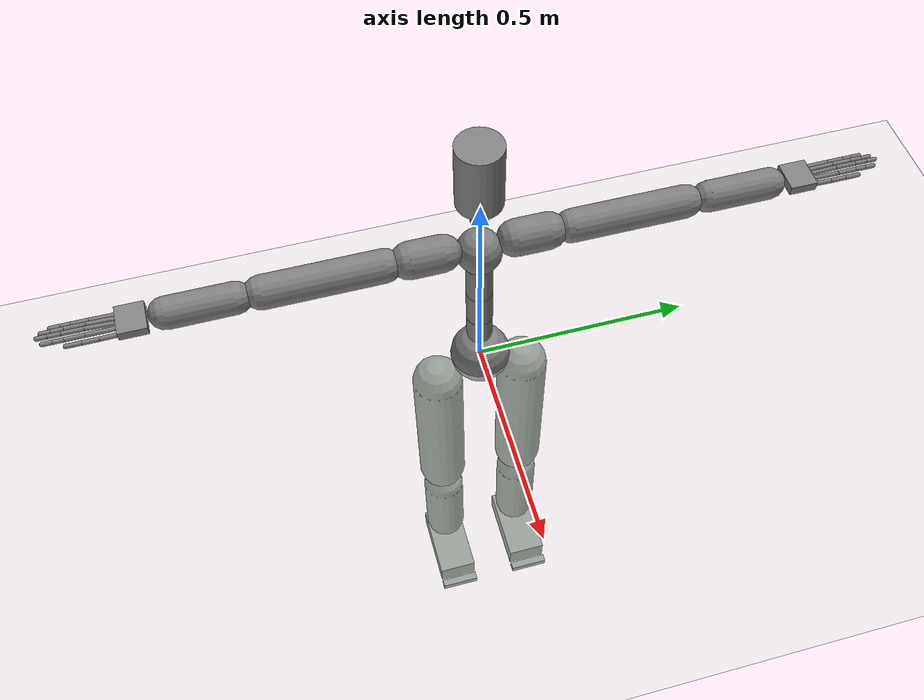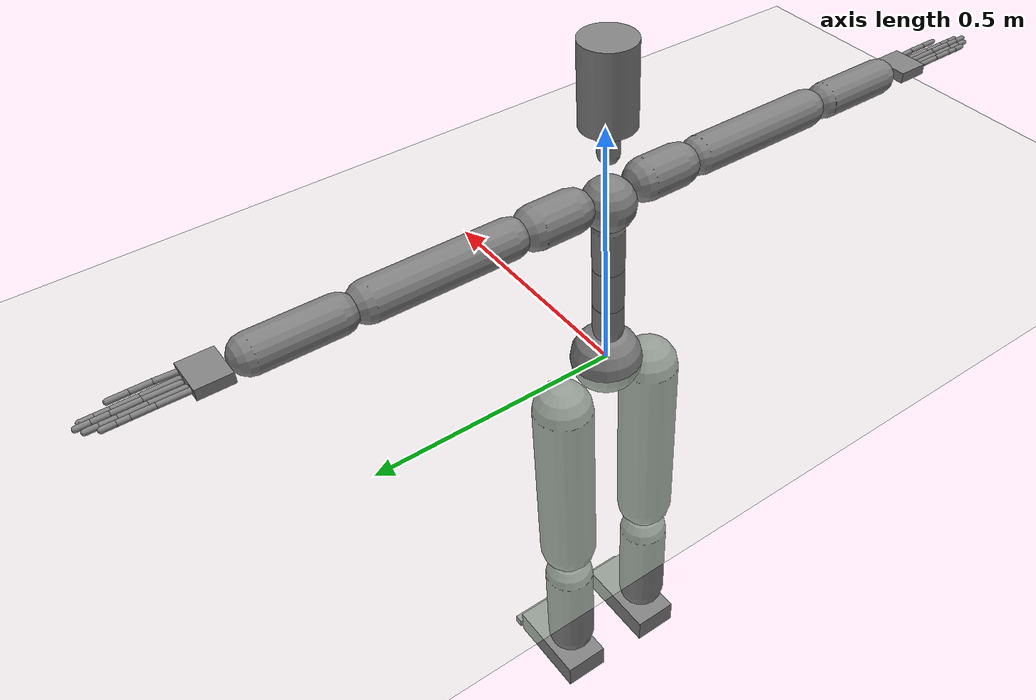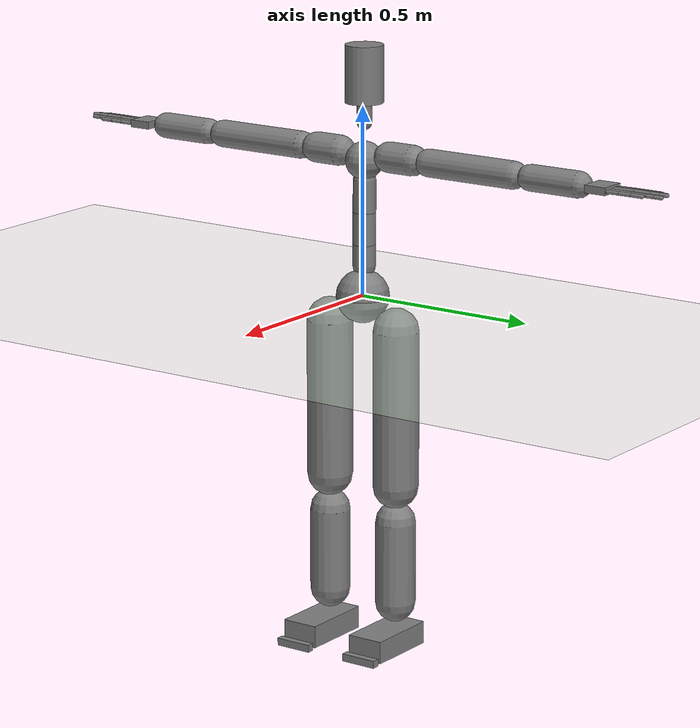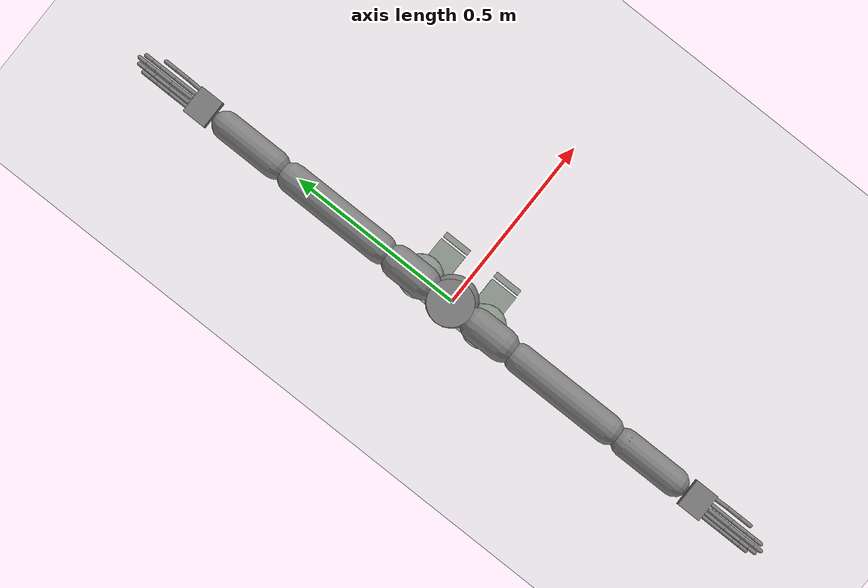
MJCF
<!-- change the damping from 50 to 500 -->
<mujoco model="humanoid">
  <compiler coordinate="local"/>
  <statistic extent="2" center="0 0 1"/>
  <option timestep="0.00555"/>
  <default>
    <motor ctrlrange="-1 1" ctrllimited="true"/>
    <geom type="capsule" condim="1" friction="1.0 0.05 0.05" solimp=".9 .99 .003" solref=".015 1"/>
    <joint type="hinge" damping="0.1" stiffness="5" armature=".007" limited="true" solimplimit="0 .99 .01"/>
    <site size=".04" group="3"/>
    <default class="force-torque">
      <site type="box" size=".01 .01 .02" rgba="1 0 0 1"/>
    </default>
    <default class="touch">
      <site type="capsule" rgba="0 0 1 .3"/>
    </default>
  </default>
  <asset>
    <texture type="skybox" builtin="gradient" rgb1=".4 .5 .6" rgb2="0 0 0" width="100" height="100"/>
    <texture builtin="flat" height="1278" mark="cross" markrgb="1 1 1" name="texgeom" random="0.01" rgb1="0.8 0.6 0.4" rgb2="0.8 0.6 0.4" type="cube" width="127"/>
    <texture builtin="checker" height="100" name="texplane" rgb1="0 0 0" rgb2="0.8 0.8 0.8" type="2d" width="100"/>
    <material name="MatPlane" reflectance="0.5" shininess="1" specular="1" texrepeat="60 60" texture="texplane"/>
    <material name="geom" texture="texgeom" texuniform="true"/>
  </asset>
  <worldbody>
    <light cutoff="100" diffuse="1 1 1" dir="-0 0 -1.3" directional="true" exponent="1" pos="0 0 1.3" specular=".1 .1 .1"/>
    <geom conaffinity="1" condim="3" name="floor" pos="0 0 0" rgba="0.8 0.9 0.8 1" size="100 100 .2" type="plane" material="MatPlane"/>
    <body name="pHipOrigin" pos="0 0 0">
      <freejoint name="pHipOrigin"/>
      <geom type="sphere" contype="1" conaffinity="1" density="4629.6296296296305" size="0.07011" pos="0.0000 0.0000 -0.0000"/>
      <body name="jL5S1" pos="-0.006525112993283282 0.0 0.05872585135900841">
        <geom type="capsule" contype="1" conaffinity="1" density="1000" fromto="0 0 0.02 0.0 0.0 0.07786956429481506" size="0.03"/>
        <joint name="jL5S1_x" type="hinge" pos="0 0 0" axis="1 0 0" stiffness="500" damping="500" armature="0.02" range="-180.0000 180.0000"/>
        <joint name="jL5S1_y" type="hinge" pos="0 0 0" axis="0 1 0" stiffness="500" damping="500" armature="0.02" range="-180.0000 180.0000"/>
        <joint name="jL5S1_z" type="hinge" pos="0 0 0" axis="0 0 1" stiffness="500" damping="500" armature="0.02" range="-180.0000 180.0000"/>
        <body name="jL4L3" pos="0.0 0.0 0.07786956429481506">
          <geom type="capsule" contype="1" conaffinity="1" density="1000" fromto="0 0 0 -0.0006549608004406925 0.0 0.08489453092232938" size="0.03"/>
          <joint name="jL4L3_x" type="hinge" pos="0 0 0" axis="1 0 0" stiffness="500" damping="500" armature="0.02" range="-180.0000 180.0000"/>
          <joint name="jL4L3_y" type="hinge" pos="0 0 0" axis="0 1 0" stiffness="500" damping="500" armature="0.02" range="-180.0000 180.0000"/>
          <joint name="jL4L3_z" type="hinge" pos="0 0 0" axis="0 0 1" stiffness="500" damping="500" armature="0.02" range="-180.0000 180.0000"/>
          <body name="jL1T12" pos="-0.0006549608004406925 0.0 0.08489453092232938">
            <geom type="capsule" contype="1" conaffinity="1" density="1000" fromto="0 0 0 -0.0006628721485151534 0.0 0.08575296726030318" size="0.03"/>
            <joint name="jL1T12_x" type="hinge" pos="0 0 0" axis="1 0 0" stiffness="500" damping="500" armature="0.02" range="-180.0000 180.0000"/>
            <joint name="jL1T12_y" type="hinge" pos="0 0 0" axis="0 1 0" stiffness="500" damping="500" armature="0.02" range="-180.0000 180.0000"/>
            <joint name="jL1T12_z" type="hinge" pos="0 0 0" axis="0 0 1" stiffness="500" damping="500" armature="0.02" range="-180.0000 180.0000"/>
            <body name="jT9T8" pos="-0.0006628721485151534 0.0 0.08575296726030318">
              <geom type="sphere" contype="1" conaffinity="1" density="1000" size="0.05011" pos="0.0000 0.0000 0.050000"/>
              <joint name="jT9T8_x" type="hinge" pos="0 0 0" axis="1 0 0" stiffness="500" damping="500" armature="0.02" range="-180.0000 180.0000"/>
              <joint name="jT9T8_y" type="hinge" pos="0 0 0" axis="0 1 0" stiffness="500" damping="500" armature="0.02" range="-180.0000 180.0000"/>
              <joint name="jT9T8_z" type="hinge" pos="0 0 0" axis="0 0 1" stiffness="500" damping="500" armature="0.02" range="-180.0000 180.0000"/>
              <body name="jT1C7" pos="0.0 0.0 0.11929699778556824">
                <geom type="capsule" contype="1" conaffinity="1" density="1000" fromto="0 0 0.03 0.0009642789804840591 0.0 0.0817350471826591" size="0.02"/>
                <joint name="jT1C7_x" type="hinge" pos="0 0 0" axis="1 0 0" stiffness="500" damping="500" armature="0.02" range="-180.0000 180.0000"/>
                <joint name="jT1C7_y" type="hinge" pos="0 0 0" axis="0 1 0" stiffness="500" damping="500" armature="0.02" range="-180.0000 180.0000"/>
                <joint name="jT1C7_z" type="hinge" pos="0 0 0" axis="0 0 1" stiffness="500" damping="500" armature="0.02" range="-180.0000 180.0000"/>
                <body name="jC1Head" pos="0.0009642789804840591 0.0 0.0817350471826591">
                  <geom type="cylinder" contype="1" conaffinity="1" density="1000" fromto="0 0 0 0 0 0.15" size="0.05"/>
                  <joint name="jC1Head_x" type="hinge" pos="0 0 0" axis="1 0 0" stiffness="500" damping="500" armature="0.02" range="-180.0000 180.0000"/>
                  <joint name="jC1Head_y" type="hinge" pos="0 0 0" axis="0 1 0" stiffness="500" damping="500" armature="0.02" range="-180.0000 180.0000"/>
                  <joint name="jC1Head_z" type="hinge" pos="0 0 0" axis="0 0 1" stiffness="500" damping="500" armature="0.02" range="-180.0000 180.0000"/>
                </body>
              </body>
              <body name="jRightT4Shoulder" pos="0.0 -0.02755671020111957 0.06718930767951037">
                <geom type="capsule" contype="1" conaffinity="1" density="1000" fromto="0 -0.05 0 0.0 -0.12239102274179459 0.0" size="0.04"/>
                <joint name="jRightT4Shoulder_x" type="hinge" pos="0 0 0" axis="1 0 0" stiffness="500" damping="500" armature="0.02" range="-180.0000 180.0000"/>
                <joint name="jRightT4Shoulder_y" type="hinge" pos="0 0 0" axis="0 1 0" stiffness="500" damping="500" armature="0.02" range="-180.0000 180.0000"/>
                <joint name="jRightT4Shoulder_z" type="hinge" pos="0 0 0" axis="0 0 1" stiffness="500" damping="500" armature="0.02" range="-180.0000 180.0000"/>
                <body name="jRightShoulder" pos="0.0 -0.12239102274179459 0.0">
                  <geom type="capsule" contype="1" conaffinity="1" density="1000" fromto="0 -0.05 0 0.0 -0.3058325946331024 0.0" size="0.036"/>
                  <joint name="jRightShoulder_x" type="hinge" pos="0 0 0" axis="1 0 0" stiffness="500" damping="500" armature="0.02" range="-180.0000 180.0000"/>
                  <joint name="jRightShoulder_y" type="hinge" pos="0 0 0" axis="0 1 0" stiffness="500" damping="500" armature="0.02" range="-180.0000 180.0000"/>
                  <joint name="jRightShoulder_z" type="hinge" pos="0 0 0" axis="0 0 1" stiffness="500" damping="500" armature="0.02" range="-180.0000 180.0000"/>
                  <body name="jRightElbow" pos="0.0 -0.3058325946331024 0.0">
                    <geom type="capsule" contype="1" conaffinity="1" density="1000" fromto="0 -0.05 0 0.00010393499343700972 -0.1922360254445637 0.0" size="0.034"/>
                    <joint name="jRightElbow_x" type="hinge" pos="0 0 0" axis="1 0 0" stiffness="500" damping="500" armature="0.02" range="-180.0000 180.0000"/>
                    <joint name="jRightElbow_y" type="hinge" pos="0 0 0" axis="0 1 0" stiffness="500" damping="500" armature="0.02" range="-180.0000 180.0000"/>
                    <joint name="jRightElbow_z" type="hinge" pos="0 0 0" axis="0 0 1" stiffness="500" damping="500" armature="0.02" range="-180.0000 180.0000"/>
                    <body name="jRightWrist" pos="0.00010393499343700972 -0.2582360254445637 0.0">
                      <geom density="1000" type="box" pos="0 0 0" size="0.035 0.03 0.01" quat="1.0 0 0 0"/>
                      <joint name="jRightWrist_x" type="hinge" pos="0 0 0" axis="1 0 0" stiffness="500" damping="500" armature="0.02" range="-180.0000 180.0000"/>
                      <joint name="jRightWrist_y" type="hinge" pos="0 0 0" axis="0 1 0" stiffness="500" damping="500" armature="0.02" range="-180.0000 180.0000"/>
                      <joint name="jRightWrist_z" type="hinge" pos="0 0 0" axis="0 0 1" stiffness="500" damping="500" armature="0.02" range="-180.0000 180.0000"/>
                      <body name="jRightFirstCMC" pos="0.027593337 -0.02644976 -0.0012495951">
                        <geom type="capsule" contype="1" conaffinity="1" density="1000" fromto="0 0 0 0.001373075065203011 -0.03874726966023445 0.0008187273051589727" size="0.005"/>
                        <joint name="jRightFirstCMC_x" type="hinge" pos="0 0 0" axis="1 0 0" stiffness="500" damping="500" armature="0.02" range="-180.0000 180.0000"/>
                        <joint name="jRightFirstCMC_y" type="hinge" pos="0 0 0" axis="0 1 0" stiffness="500" damping="500" armature="0.02" range="-180.0000 180.0000"/>
                        <joint name="jRightFirstCMC_z" type="hinge" pos="0 0 0" axis="0 0 1" stiffness="500" damping="500" armature="0.02" range="-180.0000 180.0000"/>
                        <body name="jRightFirstMCP" pos="0.0013730751 -0.03874727 0.0008187273">
                          <geom type="capsule" contype="1" conaffinity="1" density="1000" fromto="0 0 0 0.0 -0.03402020037174225 0.0" size="0.005"/>
                          <joint name="jRightFirstMCP_x" type="hinge" pos="0 0 0" axis="1 0 0" stiffness="500" damping="500" armature="0.02" range="-180.0000 180.0000"/>
                          <joint name="jRightFirstMCP_y" type="hinge" pos="0 0 0" axis="0 1 0" stiffness="500" damping="500" armature="0.02" range="-180.0000 180.0000"/>
                          <joint name="jRightFirstMCP_z" type="hinge" pos="0 0 0" axis="0 0 1" stiffness="500" damping="500" armature="0.02" range="-180.0000 180.0000"/>
                          <body name="jRightIP" pos="0.0 -0.0340202 0.0">
                            <geom type="capsule" contype="1" conaffinity="1" density="1000" fromto="0 0 0 0.0 -0.03095199167728424 0.0" size="0.005"/>
                            <joint name="jRightIP_x" type="hinge" pos="0 0 0" axis="1 0 0" stiffness="500" damping="500" armature="0.02" range="-180.0000 180.0000"/>
                            <joint name="jRightIP_y" type="hinge" pos="0 0 0" axis="0 1 0" stiffness="500" damping="500" armature="0.02" range="-180.0000 180.0000"/>
                            <joint name="jRightIP_z" type="hinge" pos="0 0 0" axis="0 0 1" stiffness="500" damping="500" armature="0.02" range="-180.0000 180.0000"/>
                          </body>
                        </body>
                      </body>
                      <body name="jRightSecondCMC" pos="0.011694563 -0.03416781 -0.00059596956">
                        <geom type="capsule" contype="1" conaffinity="1" density="1000" fromto="0 0 0 -0.0003564362705219537 -0.0568489134311676 -0.0005897116498090327" size="0.005"/>
                        <joint name="jRightSecondCMC_x" type="hinge" pos="0 0 0" axis="1 0 0" stiffness="500" damping="500" armature="0.02" range="-180.0000 180.0000"/>
                        <joint name="jRightSecondCMC_y" type="hinge" pos="0 0 0" axis="0 1 0" stiffness="500" damping="500" armature="0.02" range="-180.0000 180.0000"/>
                        <joint name="jRightSecondCMC_z" type="hinge" pos="0 0 0" axis="0 0 1" stiffness="500" damping="500" armature="0.02" range="-180.0000 180.0000"/>
                        <body name="jRightSecondMCP" pos="-0.00035643627 -0.056848913 -0.00058971165">
                          <geom type="capsule" contype="1" conaffinity="1" density="1000" fromto="0 0 0 0.0 -0.041111961007118225 0.0" size="0.005"/>
                          <joint name="jRightSecondMCP_x" type="hinge" pos="0 0 0" axis="1 0 0" stiffness="500" damping="500" armature="0.02" range="-180.0000 180.0000"/>
                          <joint name="jRightSecondMCP_y" type="hinge" pos="0 0 0" axis="0 1 0" stiffness="500" damping="500" armature="0.02" range="-180.0000 180.0000"/>
                          <joint name="jRightSecondMCP_z" type="hinge" pos="0 0 0" axis="0 0 1" stiffness="500" damping="500" armature="0.02" range="-180.0000 180.0000"/>
                          <body name="jRightSecondPIP" pos="0.0 -0.04111196 0.0">
                            <geom type="capsule" contype="1" conaffinity="1" density="1000" fromto="0 0 0 0.0 -0.022474944591522217 0.0" size="0.005"/>
                            <joint name="jRightSecondPIP_x" type="hinge" pos="0 0 0" axis="1 0 0" stiffness="500" damping="500" armature="0.02" range="-180.0000 180.0000"/>
                            <joint name="jRightSecondPIP_y" type="hinge" pos="0 0 0" axis="0 1 0" stiffness="500" damping="500" armature="0.02" range="-180.0000 180.0000"/>
                            <joint name="jRightSecondPIP_z" type="hinge" pos="0 0 0" axis="0 0 1" stiffness="500" damping="500" armature="0.02" range="-180.0000 180.0000"/>
                            <body name="jRightSecondDIP" pos="0.0 -0.022474945 0.0">
                              <geom type="capsule" contype="1" conaffinity="1" density="1000" fromto="0 0 0 0.0 -0.020166829228401184 0.0" size="0.005"/>
                              <joint name="jRightSecondDIP_x" type="hinge" pos="0 0 0" axis="1 0 0" stiffness="500" damping="500" armature="0.02" range="-180.0000 180.0000"/>
                              <joint name="jRightSecondDIP_y" type="hinge" pos="0 0 0" axis="0 1 0" stiffness="500" damping="500" armature="0.02" range="-180.0000 180.0000"/>
                              <joint name="jRightSecondDIP_z" type="hinge" pos="0 0 0" axis="0 0 1" stiffness="500" damping="500" armature="0.02" range="-180.0000 180.0000"/>
                            </body>
                          </body>
                        </body>
                      </body>
                      <body name="jRightThirdCMC" pos="-0.0006651678 -0.03597074 0.0015122646">
                        <geom type="capsule" contype="1" conaffinity="1" density="1000" fromto="0 0 0 -0.0006651937146671116 -0.05511140078306198 0.0014993692748248577" size="0.005"/>
                        <joint name="jRightThirdCMC_x" type="hinge" pos="0 0 0" axis="1 0 0" stiffness="500" damping="500" armature="0.02" range="-180.0000 180.0000"/>
                        <joint name="jRightThirdCMC_y" type="hinge" pos="0 0 0" axis="0 1 0" stiffness="500" damping="500" armature="0.02" range="-180.0000 180.0000"/>
                        <joint name="jRightThirdCMC_z" type="hinge" pos="0 0 0" axis="0 0 1" stiffness="500" damping="500" armature="0.02" range="-180.0000 180.0000"/>
                        <body name="jRightThirdMCP" pos="-0.0006651937 -0.0551114 0.0014993693">
                          <geom type="capsule" contype="1" conaffinity="1" density="1000" fromto="0 0 0 0.0 -0.044959403574466705 0.0" size="0.005"/>
                          <joint name="jRightThirdMCP_x" type="hinge" pos="0 0 0" axis="1 0 0" stiffness="500" damping="500" armature="0.02" range="-180.0000 180.0000"/>
                          <joint name="jRightThirdMCP_y" type="hinge" pos="0 0 0" axis="0 1 0" stiffness="500" damping="500" armature="0.02" range="-180.0000 180.0000"/>
                          <joint name="jRightThirdMCP_z" type="hinge" pos="0 0 0" axis="0 0 1" stiffness="500" damping="500" armature="0.02" range="-180.0000 180.0000"/>
                          <body name="jRightThirdPIP" pos="0.0 -0.044959404 0.0">
                            <geom type="capsule" contype="1" conaffinity="1" density="1000" fromto="0 0 0 0.0 -0.0263042151927948 0.0" size="0.005"/>
                            <joint name="jRightThirdPIP_x" type="hinge" pos="0 0 0" axis="1 0 0" stiffness="500" damping="500" armature="0.02" range="-180.0000 180.0000"/>
                            <joint name="jRightThirdPIP_y" type="hinge" pos="0 0 0" axis="0 1 0" stiffness="500" damping="500" armature="0.02" range="-180.0000 180.0000"/>
                            <joint name="jRightThirdPIP_z" type="hinge" pos="0 0 0" axis="0 0 1" stiffness="500" damping="500" armature="0.02" range="-180.0000 180.0000"/>
                            <body name="jRightThirdDIP" pos="0.0 -0.026304215 0.0">
                              <geom type="capsule" contype="1" conaffinity="1" density="1000" fromto="0 0 0 0.0 -0.020664691925048828 0.0" size="0.005"/>
                              <joint name="jRightThirdDIP_x" type="hinge" pos="0 0 0" axis="1 0 0" stiffness="500" damping="500" armature="0.02" range="-180.0000 180.0000"/>
                              <joint name="jRightThirdDIP_y" type="hinge" pos="0 0 0" axis="0 1 0" stiffness="500" damping="500" armature="0.02" range="-180.0000 180.0000"/>
                              <joint name="jRightThirdDIP_z" type="hinge" pos="0 0 0" axis="0 0 1" stiffness="500" damping="500" armature="0.02" range="-180.0000 180.0000"/>
                            </body>
                          </body>
                        </body>
                      </body>
                      <body name="jRightFourthCMC" pos="-0.012202627 -0.033986334 0.0007999851">
                        <geom type="capsule" contype="1" conaffinity="1" density="1000" fromto="0 0 0 -0.00039075271342881024 -0.05355646833777428 0.0008414146141149104" size="0.005"/>
                        <joint name="jRightFourthCMC_x" type="hinge" pos="0 0 0" axis="1 0 0" stiffness="500" damping="500" armature="0.02" range="-180.0000 180.0000"/>
                        <joint name="jRightFourthCMC_y" type="hinge" pos="0 0 0" axis="0 1 0" stiffness="500" damping="500" armature="0.02" range="-180.0000 180.0000"/>
                        <joint name="jRightFourthCMC_z" type="hinge" pos="0 0 0" axis="0 0 1" stiffness="500" damping="500" armature="0.02" range="-180.0000 180.0000"/>
                        <body name="jRightFourthMCP" pos="-0.0003907527 -0.05355647 0.0008414146">
                          <geom type="capsule" contype="1" conaffinity="1" density="1000" fromto="0 0 0 0.0 -0.04271991550922394 0.0" size="0.005"/>
                          <joint name="jRightFourthMCP_x" type="hinge" pos="0 0 0" axis="1 0 0" stiffness="500" damping="500" armature="0.02" range="-180.0000 180.0000"/>
                          <joint name="jRightFourthMCP_y" type="hinge" pos="0 0 0" axis="0 1 0" stiffness="500" damping="500" armature="0.02" range="-180.0000 180.0000"/>
                          <joint name="jRightFourthMCP_z" type="hinge" pos="0 0 0" axis="0 0 1" stiffness="500" damping="500" armature="0.02" range="-180.0000 180.0000"/>
                          <body name="jRightFourthPIP" pos="0.0 -0.042719916 0.0">
                            <geom type="capsule" contype="1" conaffinity="1" density="1000" fromto="0 0 0 0.0 -0.025312185287475586 0.0" size="0.005"/>
                            <joint name="jRightFourthPIP_x" type="hinge" pos="0 0 0" axis="1 0 0" stiffness="500" damping="500" armature="0.02" range="-180.0000 180.0000"/>
                            <joint name="jRightFourthPIP_y" type="hinge" pos="0 0 0" axis="0 1 0" stiffness="500" damping="500" armature="0.02" range="-180.0000 180.0000"/>
                            <joint name="jRightFourthPIP_z" type="hinge" pos="0 0 0" axis="0 0 1" stiffness="500" damping="500" armature="0.02" range="-180.0000 180.0000"/>
                            <body name="jRightFourthDIP" pos="0.0 -0.025312185 0.0">
                              <geom type="capsule" contype="1" conaffinity="1" density="1000" fromto="0 0 0 0.0 -0.019395485520362854 0.0" size="0.005"/>
                              <joint name="jRightFourthDIP_x" type="hinge" pos="0 0 0" axis="1 0 0" stiffness="500" damping="500" armature="0.02" range="-180.0000 180.0000"/>
                              <joint name="jRightFourthDIP_y" type="hinge" pos="0 0 0" axis="0 1 0" stiffness="500" damping="500" armature="0.02" range="-180.0000 180.0000"/>
                              <joint name="jRightFourthDIP_z" type="hinge" pos="0 0 0" axis="0 0 1" stiffness="500" damping="500" armature="0.02" range="-180.0000 180.0000"/>
                            </body>
                          </body>
                        </body>
                      </body>
                      <body name="jRightFifthCMC" pos="-0.02139312 -0.029808875 0.00058803335">
                        <geom type="capsule" contype="1" conaffinity="1" density="1000" fromto="0 0 0 -7.511340754717821e-06 -0.05085420235991478 0.0006998170865699649" size="0.005"/>
                        <joint name="jRightFifthCMC_x" type="hinge" pos="0 0 0" axis="1 0 0" stiffness="500" damping="500" armature="0.02" range="-180.0000 180.0000"/>
                        <joint name="jRightFifthCMC_y" type="hinge" pos="0 0 0" axis="0 1 0" stiffness="500" damping="500" armature="0.02" range="-180.0000 180.0000"/>
                        <joint name="jRightFifthCMC_z" type="hinge" pos="0 0 0" axis="0 0 1" stiffness="500" damping="500" armature="0.02" range="-180.0000 180.0000"/>
                        <body name="jRightFifthMCP" pos="-7.5113408e-06 -0.050854202 0.0006998171">
                          <geom type="capsule" contype="1" conaffinity="1" density="1000" fromto="0 0 0 0.0 -0.03575402498245239 0.0" size="0.005"/>
                          <joint name="jRightFifthMCP_x" type="hinge" pos="0 0 0" axis="1 0 0" stiffness="500" damping="500" armature="0.02" range="-180.0000 180.0000"/>
                          <joint name="jRightFifthMCP_y" type="hinge" pos="0 0 0" axis="0 1 0" stiffness="500" damping="500" armature="0.02" range="-180.0000 180.0000"/>
                          <joint name="jRightFifthMCP_z" type="hinge" pos="0 0 0" axis="0 0 1" stiffness="500" damping="500" armature="0.02" range="-180.0000 180.0000"/>
                          <body name="jRightFifthPIP" pos="0.0 -0.035754025 0.0">
                            <geom type="capsule" contype="1" conaffinity="1" density="1000" fromto="0 0 0 0.0 -0.019388854503631592 0.0" size="0.005"/>
                            <joint name="jRightFifthPIP_x" type="hinge" pos="0 0 0" axis="1 0 0" stiffness="500" damping="500" armature="0.02" range="-180.0000 180.0000"/>
                            <joint name="jRightFifthPIP_y" type="hinge" pos="0 0 0" axis="0 1 0" stiffness="500" damping="500" armature="0.02" range="-180.0000 180.0000"/>
                            <joint name="jRightFifthPIP_z" type="hinge" pos="0 0 0" axis="0 0 1" stiffness="500" damping="500" armature="0.02" range="-180.0000 180.0000"/>
                            <body name="jRightFifthDIP" pos="0.0 -0.019388855 0.0">
                              <geom type="capsule" contype="1" conaffinity="1" density="1000" fromto="0 0 0 0.0 -0.020557522773742676 0.0" size="0.005"/>
                              <joint name="jRightFifthDIP_x" type="hinge" pos="0 0 0" axis="1 0 0" stiffness="500" damping="500" armature="0.02" range="-180.0000 180.0000"/>
                              <joint name="jRightFifthDIP_y" type="hinge" pos="0 0 0" axis="0 1 0" stiffness="500" damping="500" armature="0.02" range="-180.0000 180.0000"/>
                              <joint name="jRightFifthDIP_z" type="hinge" pos="0 0 0" axis="0 0 1" stiffness="500" damping="500" armature="0.02" range="-180.0000 180.0000"/>
                            </body>
                          </body>
                        </body>
                      </body>
                    </body>
                  </body>
                </body>
              </body>
              <body name="jLeftT4Shoulder" pos="0.0 0.02760933651714752 0.06731762218852957">
                <geom type="capsule" contype="1" conaffinity="1" density="1000" fromto="0 0.05 0 0.0 0.12267043441534042 0.0" size="0.04"/>
                <joint name="jLeftT4Shoulder_x" type="hinge" pos="0 0 0" axis="1 0 0" stiffness="500" damping="500" armature="0.02" range="-180.0000 180.0000"/>
                <joint name="jLeftT4Shoulder_y" type="hinge" pos="0 0 0" axis="0 1 0" stiffness="500" damping="500" armature="0.02" range="-180.0000 180.0000"/>
                <joint name="jLeftT4Shoulder_z" type="hinge" pos="0 0 0" axis="0 0 1" stiffness="500" damping="500" armature="0.02" range="-180.0000 180.0000"/>
                <body name="jLeftShoulder" pos="0.0 0.12267043441534042 0.0">
                  <geom type="capsule" contype="1" conaffinity="1" density="1000" fromto="0 0.05 0 0.0 0.3049902617931366 0.0" size="0.036"/>
                  <joint name="jLeftShoulder_x" type="hinge" pos="0 0 0" axis="1 0 0" stiffness="500" damping="500" armature="0.02" range="-180.0000 180.0000"/>
                  <joint name="jLeftShoulder_y" type="hinge" pos="0 0 0" axis="0 1 0" stiffness="500" damping="500" armature="0.02" range="-180.0000 180.0000"/>
                  <joint name="jLeftShoulder_z" type="hinge" pos="0 0 0" axis="0 0 1" stiffness="500" damping="500" armature="0.02" range="-180.0000 180.0000"/>
                  <body name="jLeftElbow" pos="0.0 0.3049902617931366 0.0">
                    <geom type="capsule" contype="1" conaffinity="1" density="1000" fromto="0 0.05 0 0.0001035571075008143 0.19129713317154262 0.0" size="0.034"/>
                    <joint name="jLeftElbow_x" type="hinge" pos="0 0 0" axis="1 0 0" stiffness="500" damping="500" armature="0.02" range="-180.0000 180.0000"/>
                    <joint name="jLeftElbow_y" type="hinge" pos="0 0 0" axis="0 1 0" stiffness="500" damping="500" armature="0.02" range="-180.0000 180.0000"/>
                    <joint name="jLeftElbow_z" type="hinge" pos="0 0 0" axis="0 0 1" stiffness="500" damping="500" armature="0.02" range="-180.0000 180.0000"/>
                    <body name="jLeftWrist" pos="0.0001035571075008143 0.2572971331715426 0.0">
                      <geom density="1000" type="box" pos="0 0 0" size="0.035 0.03 0.01" quat="1.0 0 0 0"/>
                      <joint name="jLeftWrist_x" type="hinge" pos="0 0 0" axis="1 0 0" stiffness="500" damping="500" armature="0.02" range="-180.0000 180.0000"/>
                      <joint name="jLeftWrist_y" type="hinge" pos="0 0 0" axis="0 1 0" stiffness="500" damping="500" armature="0.02" range="-180.0000 180.0000"/>
                      <joint name="jLeftWrist_z" type="hinge" pos="0 0 0" axis="0 0 1" stiffness="500" damping="500" armature="0.02" range="-180.0000 180.0000"/>
                      <body name="jLeftFirstCMC" pos="0.027007377 0.027071157 -0.0012087612">
                        <geom type="capsule" contype="1" conaffinity="1" density="1000" fromto="0 0 0 0.001359848421998322 0.03874639794230461 0.0007978812791407108" size="0.005"/>
                        <joint name="jLeftFirstCMC_x" type="hinge" pos="0 0 0" axis="1 0 0" stiffness="500" damping="500" armature="0.02" range="-180.0000 180.0000"/>
                        <joint name="jLeftFirstCMC_y" type="hinge" pos="0 0 0" axis="0 1 0" stiffness="500" damping="500" armature="0.02" range="-180.0000 180.0000"/>
                        <joint name="jLeftFirstCMC_z" type="hinge" pos="0 0 0" axis="0 0 1" stiffness="500" damping="500" armature="0.02" range="-180.0000 180.0000"/>
                        <body name="jLeftFirstMCP" pos="0.0013598484 0.038746398 0.0007978813">
                          <geom type="capsule" contype="1" conaffinity="1" density="1000" fromto="0 0 0 0.0 0.03402020037174225 0.0" size="0.005"/>
                          <joint name="jLeftFirstMCP_x" type="hinge" pos="0 0 0" axis="1 0 0" stiffness="500" damping="500" armature="0.02" range="-180.0000 180.0000"/>
                          <joint name="jLeftFirstMCP_y" type="hinge" pos="0 0 0" axis="0 1 0" stiffness="500" damping="500" armature="0.02" range="-180.0000 180.0000"/>
                          <joint name="jLeftFirstMCP_z" type="hinge" pos="0 0 0" axis="0 0 1" stiffness="500" damping="500" armature="0.02" range="-180.0000 180.0000"/>
                          <body name="jLeftIP" pos="0.0 0.0340202 0.0">
                            <geom type="capsule" contype="1" conaffinity="1" density="1000" fromto="0 0 0 0.0 0.03095199167728424 0.0" size="0.005"/>
                            <joint name="jLeftIP_x" type="hinge" pos="0 0 0" axis="1 0 0" stiffness="500" damping="500" armature="0.02" range="-180.0000 180.0000"/>
                            <joint name="jLeftIP_y" type="hinge" pos="0 0 0" axis="0 1 0" stiffness="500" damping="500" armature="0.02" range="-180.0000 180.0000"/>
                            <joint name="jLeftIP_z" type="hinge" pos="0 0 0" axis="0 0 1" stiffness="500" damping="500" armature="0.02" range="-180.0000 180.0000"/>
                          </body>
                        </body>
                      </body>
                      <body name="jLeftSecondCMC" pos="0.011829264 0.034104943 -0.000600891">
                        <geom type="capsule" contype="1" conaffinity="1" density="1000" fromto="0 0 0 -0.00031078883330337703 0.05685007944703102 -0.0005969966296106577" size="0.005"/>
                        <joint name="jLeftSecondCMC_x" type="hinge" pos="0 0 0" axis="1 0 0" stiffness="500" damping="500" armature="0.02" range="-180.0000 180.0000"/>
                        <joint name="jLeftSecondCMC_y" type="hinge" pos="0 0 0" axis="0 1 0" stiffness="500" damping="500" armature="0.02" range="-180.0000 180.0000"/>
                        <joint name="jLeftSecondCMC_z" type="hinge" pos="0 0 0" axis="0 0 1" stiffness="500" damping="500" armature="0.02" range="-180.0000 180.0000"/>
                        <body name="jLeftSecondMCP" pos="-0.00031078883 0.05685008 -0.00059699663">
                          <geom type="capsule" contype="1" conaffinity="1" density="1000" fromto="0 0 0 0.0 0.041111961007118225 0.0" size="0.005"/>
                          <joint name="jLeftSecondMCP_x" type="hinge" pos="0 0 0" axis="1 0 0" stiffness="500" damping="500" armature="0.02" range="-180.0000 180.0000"/>
                          <joint name="jLeftSecondMCP_y" type="hinge" pos="0 0 0" axis="0 1 0" stiffness="500" damping="500" armature="0.02" range="-180.0000 180.0000"/>
                          <joint name="jLeftSecondMCP_z" type="hinge" pos="0 0 0" axis="0 0 1" stiffness="500" damping="500" armature="0.02" range="-180.0000 180.0000"/>
                          <body name="jLeftSecondPIP" pos="0.0 0.04111196 0.0">
                            <geom type="capsule" contype="1" conaffinity="1" density="1000" fromto="0 0 0 0.0 0.022474944591522217 0.0" size="0.005"/>
                            <joint name="jLeftSecondPIP_x" type="hinge" pos="0 0 0" axis="1 0 0" stiffness="500" damping="500" armature="0.02" range="-180.0000 180.0000"/>
                            <joint name="jLeftSecondPIP_y" type="hinge" pos="0 0 0" axis="0 1 0" stiffness="500" damping="500" armature="0.02" range="-180.0000 180.0000"/>
                            <joint name="jLeftSecondPIP_z" type="hinge" pos="0 0 0" axis="0 0 1" stiffness="500" damping="500" armature="0.02" range="-180.0000 180.0000"/>
                            <body name="jLeftSecondDIP" pos="0.0 0.022474945 0.0">
                              <geom type="capsule" contype="1" conaffinity="1" density="1000" fromto="0 0 0 0.0 0.020166829228401184 0.0" size="0.005"/>
                              <joint name="jLeftSecondDIP_x" type="hinge" pos="0 0 0" axis="1 0 0" stiffness="500" damping="500" armature="0.02" range="-180.0000 180.0000"/>
                              <joint name="jLeftSecondDIP_y" type="hinge" pos="0 0 0" axis="0 1 0" stiffness="500" damping="500" armature="0.02" range="-180.0000 180.0000"/>
                              <joint name="jLeftSecondDIP_z" type="hinge" pos="0 0 0" axis="0 0 1" stiffness="500" damping="500" armature="0.02" range="-180.0000 180.0000"/>
                            </body>
                          </body>
                        </body>
                      </body>
                      <body name="jLeftThirdCMC" pos="-0.0006690729 0.035973974 0.0014618553">
                        <geom type="capsule" contype="1" conaffinity="1" density="1000" fromto="0 0 0 -0.0006705628475174308 0.05511246621608734 0.0014692263212054968" size="0.005"/>
                        <joint name="jLeftThirdCMC_x" type="hinge" pos="0 0 0" axis="1 0 0" stiffness="500" damping="500" armature="0.02" range="-180.0000 180.0000"/>
                        <joint name="jLeftThirdCMC_y" type="hinge" pos="0 0 0" axis="0 1 0" stiffness="500" damping="500" armature="0.02" range="-180.0000 180.0000"/>
                        <joint name="jLeftThirdCMC_z" type="hinge" pos="0 0 0" axis="0 0 1" stiffness="500" damping="500" armature="0.02" range="-180.0000 180.0000"/>
                        <body name="jLeftThirdMCP" pos="-0.00067056285 0.055112466 0.0014692263">
                          <geom type="capsule" contype="1" conaffinity="1" density="1000" fromto="0 0 0 0.0 0.044959403574466705 0.0" size="0.005"/>
                          <joint name="jLeftThirdMCP_x" type="hinge" pos="0 0 0" axis="1 0 0" stiffness="500" damping="500" armature="0.02" range="-180.0000 180.0000"/>
                          <joint name="jLeftThirdMCP_y" type="hinge" pos="0 0 0" axis="0 1 0" stiffness="500" damping="500" armature="0.02" range="-180.0000 180.0000"/>
                          <joint name="jLeftThirdMCP_z" type="hinge" pos="0 0 0" axis="0 0 1" stiffness="500" damping="500" armature="0.02" range="-180.0000 180.0000"/>
                          <body name="jLeftThirdPIP" pos="0.0 0.044959404 0.0">
                            <geom type="capsule" contype="1" conaffinity="1" density="1000" fromto="0 0 0 0.0 0.0263042151927948 0.0" size="0.005"/>
                            <joint name="jLeftThirdPIP_x" type="hinge" pos="0 0 0" axis="1 0 0" stiffness="500" damping="500" armature="0.02" range="-180.0000 180.0000"/>
                            <joint name="jLeftThirdPIP_y" type="hinge" pos="0 0 0" axis="0 1 0" stiffness="500" damping="500" armature="0.02" range="-180.0000 180.0000"/>
                            <joint name="jLeftThirdPIP_z" type="hinge" pos="0 0 0" axis="0 0 1" stiffness="500" damping="500" armature="0.02" range="-180.0000 180.0000"/>
                            <body name="jLeftThirdDIP" pos="0.0 0.026304215 0.0">
                              <geom type="capsule" contype="1" conaffinity="1" density="1000" fromto="0 0 0 0.0 0.020664691925048828 0.0" size="0.005"/>
                              <joint name="jLeftThirdDIP_x" type="hinge" pos="0 0 0" axis="1 0 0" stiffness="500" damping="500" armature="0.02" range="-180.0000 180.0000"/>
                              <joint name="jLeftThirdDIP_y" type="hinge" pos="0 0 0" axis="0 1 0" stiffness="500" damping="500" armature="0.02" range="-180.0000 180.0000"/>
                              <joint name="jLeftThirdDIP_z" type="hinge" pos="0 0 0" axis="0 0 1" stiffness="500" damping="500" armature="0.02" range="-180.0000 180.0000"/>
                            </body>
                          </body>
                        </body>
                      </body>
                      <body name="jLeftFourthCMC" pos="-0.012650383 0.03381249 0.0008539764">
                        <geom type="capsule" contype="1" conaffinity="1" density="1000" fromto="0 0 0 -0.00042021836270578206 0.05355340242385864 0.0008898927480913699" size="0.005"/>
                        <joint name="jLeftFourthCMC_x" type="hinge" pos="0 0 0" axis="1 0 0" stiffness="500" damping="500" armature="0.02" range="-180.0000 180.0000"/>
                        <joint name="jLeftFourthCMC_y" type="hinge" pos="0 0 0" axis="0 1 0" stiffness="500" damping="500" armature="0.02" range="-180.0000 180.0000"/>
                        <joint name="jLeftFourthCMC_z" type="hinge" pos="0 0 0" axis="0 0 1" stiffness="500" damping="500" armature="0.02" range="-180.0000 180.0000"/>
                        <body name="jLeftFourthMCP" pos="-0.00042021836 0.053553402 0.00088989275">
                          <geom type="capsule" contype="1" conaffinity="1" density="1000" fromto="0 0 0 0.0 0.04271991550922394 0.0" size="0.005"/>
                          <joint name="jLeftFourthMCP_x" type="hinge" pos="0 0 0" axis="1 0 0" stiffness="500" damping="500" armature="0.02" range="-180.0000 180.0000"/>
                          <joint name="jLeftFourthMCP_y" type="hinge" pos="0 0 0" axis="0 1 0" stiffness="500" damping="500" armature="0.02" range="-180.0000 180.0000"/>
                          <joint name="jLeftFourthMCP_z" type="hinge" pos="0 0 0" axis="0 0 1" stiffness="500" damping="500" armature="0.02" range="-180.0000 180.0000"/>
                          <body name="jLeftFourthPIP" pos="0.0 0.042719916 0.0">
                            <geom type="capsule" contype="1" conaffinity="1" density="1000" fromto="0 0 0 0.0 0.025312185287475586 0.0" size="0.005"/>
                            <joint name="jLeftFourthPIP_x" type="hinge" pos="0 0 0" axis="1 0 0" stiffness="500" damping="500" armature="0.02" range="-180.0000 180.0000"/>
                            <joint name="jLeftFourthPIP_y" type="hinge" pos="0 0 0" axis="0 1 0" stiffness="500" damping="500" armature="0.02" range="-180.0000 180.0000"/>
                            <joint name="jLeftFourthPIP_z" type="hinge" pos="0 0 0" axis="0 0 1" stiffness="500" damping="500" armature="0.02" range="-180.0000 180.0000"/>
                            <body name="jLeftFourthDIP" pos="0.0 0.025312185 0.0">
                              <geom type="capsule" contype="1" conaffinity="1" density="1000" fromto="0 0 0 0.0 0.019395485520362854 0.0" size="0.005"/>
                              <joint name="jLeftFourthDIP_x" type="hinge" pos="0 0 0" axis="1 0 0" stiffness="500" damping="500" armature="0.02" range="-180.0000 180.0000"/>
                              <joint name="jLeftFourthDIP_y" type="hinge" pos="0 0 0" axis="0 1 0" stiffness="500" damping="500" armature="0.02" range="-180.0000 180.0000"/>
                              <joint name="jLeftFourthDIP_z" type="hinge" pos="0 0 0" axis="0 0 1" stiffness="500" damping="500" armature="0.02" range="-180.0000 180.0000"/>
                            </body>
                          </body>
                        </body>
                      </body>
                      <body name="jLeftFifthCMC" pos="-0.0220412 0.029337622 0.00059748505">
                        <geom type="capsule" contype="1" conaffinity="1" density="1000" fromto="0 0 0 -1.4422073945752345e-05 0.05085281655192375 0.0007317399722523987" size="0.005"/>
                        <joint name="jLeftFifthCMC_x" type="hinge" pos="0 0 0" axis="1 0 0" stiffness="500" damping="500" armature="0.02" range="-180.0000 180.0000"/>
                        <joint name="jLeftFifthCMC_y" type="hinge" pos="0 0 0" axis="0 1 0" stiffness="500" damping="500" armature="0.02" range="-180.0000 180.0000"/>
                        <joint name="jLeftFifthCMC_z" type="hinge" pos="0 0 0" axis="0 0 1" stiffness="500" damping="500" armature="0.02" range="-180.0000 180.0000"/>
                        <body name="jLeftFifthMCP" pos="-1.4422074e-05 0.050852817 0.00073174">
                          <geom type="capsule" contype="1" conaffinity="1" density="1000" fromto="0 0 0 0.0 0.03575402498245239 0.0" size="0.005"/>
                          <joint name="jLeftFifthMCP_x" type="hinge" pos="0 0 0" axis="1 0 0" stiffness="500" damping="500" armature="0.02" range="-180.0000 180.0000"/>
                          <joint name="jLeftFifthMCP_y" type="hinge" pos="0 0 0" axis="0 1 0" stiffness="500" damping="500" armature="0.02" range="-180.0000 180.0000"/>
                          <joint name="jLeftFifthMCP_z" type="hinge" pos="0 0 0" axis="0 0 1" stiffness="500" damping="500" armature="0.02" range="-180.0000 180.0000"/>
                          <body name="jLeftFifthPIP" pos="0.0 0.035754025 0.0">
                            <geom type="capsule" contype="1" conaffinity="1" density="1000" fromto="0 0 0 0.0 0.019388854503631592 0.0" size="0.005"/>
                            <joint name="jLeftFifthPIP_x" type="hinge" pos="0 0 0" axis="1 0 0" stiffness="500" damping="500" armature="0.02" range="-180.0000 180.0000"/>
                            <joint name="jLeftFifthPIP_y" type="hinge" pos="0 0 0" axis="0 1 0" stiffness="500" damping="500" armature="0.02" range="-180.0000 180.0000"/>
                            <joint name="jLeftFifthPIP_z" type="hinge" pos="0 0 0" axis="0 0 1" stiffness="500" damping="500" armature="0.02" range="-180.0000 180.0000"/>
                            <body name="jLeftFifthDIP" pos="0.0 0.019388855 0.0">
                              <geom type="capsule" contype="1" conaffinity="1" density="1000" fromto="0 0 0 0.0 0.020557522773742676 0.0" size="0.005"/>
                              <joint name="jLeftFifthDIP_x" type="hinge" pos="0 0 0" axis="1 0 0" stiffness="500" damping="500" armature="0.02" range="-180.0000 180.0000"/>
                              <joint name="jLeftFifthDIP_y" type="hinge" pos="0 0 0" axis="0 1 0" stiffness="500" damping="500" armature="0.02" range="-180.0000 180.0000"/>
                              <joint name="jLeftFifthDIP_z" type="hinge" pos="0 0 0" axis="0 0 1" stiffness="500" damping="500" armature="0.02" range="-180.0000 180.0000"/>
                            </body>
                          </body>
                        </body>
                      </body>
                    </body>
                  </body>
                </body>
              </body>
            </body>
          </body>
        </body>
      </body>
      <body name="jRightHip" pos="-0.00017849750615992879 -0.10592911689418548 0.0016069127305219488">
        <geom type="capsule" contype="1" conaffinity="1" density="2040.816327" fromto="0 0 -0.08 5.942513378412108e-05 0.0 -0.49840008791396334" size="0.0605"/>
        <joint name="jRightHip_x" type="hinge" pos="0 0 0" axis="1 0 0" stiffness="500" damping="500" armature="0.02" range="-180.0000 180.0000"/>
        <joint name="jRightHip_y" type="hinge" pos="0 0 0" axis="0 1 0" stiffness="500" damping="500" armature="0.02" range="-180.0000 180.0000"/>
        <joint name="jRightHip_z" type="hinge" pos="0 0 0" axis="0 0 1" stiffness="500" damping="500" armature="0.02" range="-180.0000 180.0000"/>
        <body name="jRightKnee" pos="5.942513378412108e-05 0.0 -0.49840008791396334">
          <geom type="capsule" contype="1" conaffinity="1" density="1234.567901" fromto="0 0 -0.1 0.0004329160448654535 0.0 -0.31940173156976387" size="0.0533"/>
          <joint name="jRightKnee_x" type="hinge" pos="0 0 0" axis="1 0 0" stiffness="500" damping="500" armature="0.02" range="-180.0000 180.0000"/>
          <joint name="jRightKnee_y" type="hinge" pos="0 0 0" axis="0 1 0" stiffness="500" damping="500" armature="0.02" range="-180.0000 180.0000"/>
          <joint name="jRightKnee_z" type="hinge" pos="0 0 0" axis="0 0 1" stiffness="500" damping="500" armature="0.02" range="-180.0000 180.0000"/>
          <body name="jRightAnkle" pos="0.0004329160448654535 0.0 -0.38340173156976387">
            <geom density="1000" type="box" pos="0.04 0 -0.03" size="0.1 0.05 0.03" quat="1.0 0 0 0"/>
            <joint name="jRightAnkle_x" type="hinge" pos="0 0 0" axis="1 0 0" stiffness="500" damping="500" armature="0.02" range="-180.0000 180.0000"/>
            <joint name="jRightAnkle_y" type="hinge" pos="0 0 0" axis="0 1 0" stiffness="500" damping="500" armature="0.02" range="-180.0000 180.0000"/>
            <joint name="jRightAnkle_z" type="hinge" pos="0 0 0" axis="0 0 1" stiffness="500" damping="500" armature="0.02" range="-180.0000 180.0000"/>
            <body name="jRightBallFoot" pos="0.15975335357704282 0.0 -0.07328861495725192">
              <geom density="1000" type="box" pos="0 0 0.02" size="0.01 0.05 0.01" quat="1.0 0 0 0"/>
              <joint name="jRightBallFoot_x" type="hinge" pos="0 0 0" axis="1 0 0" stiffness="500" damping="500" armature="0.02" range="-180.0000 180.0000"/>
              <joint name="jRightBallFoot_y" type="hinge" pos="0 0 0" axis="0 1 0" stiffness="500" damping="500" armature="0.02" range="-180.0000 180.0000"/>
              <joint name="jRightBallFoot_z" type="hinge" pos="0 0 0" axis="0 0 1" stiffness="500" damping="500" armature="0.02" range="-180.0000 180.0000"/>
            </body>
          </body>
        </body>
      </body>
      <body name="jLeftHip" pos="-0.00017479563329459002 0.10508667016328455 0.001573048254065397">
        <geom type="capsule" contype="1" conaffinity="1" density="2040.816327" fromto="0 0 -0.08 5.933875812184923e-05 0.0 -0.497675653067484" size="0.0605"/>
        <joint name="jLeftHip_x" type="hinge" pos="0 0 0" axis="1 0 0" stiffness="500" damping="500" armature="0.02" range="-180.0000 180.0000"/>
        <joint name="jLeftHip_y" type="hinge" pos="0 0 0" axis="0 1 0" stiffness="500" damping="500" armature="0.02" range="-180.0000 180.0000"/>
        <joint name="jLeftHip_z" type="hinge" pos="0 0 0" axis="0 0 1" stiffness="500" damping="500" armature="0.02" range="-180.0000 180.0000"/>
        <body name="jLeftKnee" pos="5.933875812184923e-05 0.0 -0.497675653067484">
          <geom type="capsule" contype="1" conaffinity="1" density="1234.567901" fromto="0 0 -0.1 0.0004329161458187678 0.0 -0.31940182097664993" size="0.0533"/>
          <joint name="jLeftKnee_x" type="hinge" pos="0 0 0" axis="1 0 0" stiffness="500" damping="500" armature="0.02" range="-180.0000 180.0000"/>
          <joint name="jLeftKnee_y" type="hinge" pos="0 0 0" axis="0 1 0" stiffness="500" damping="500" armature="0.02" range="-180.0000 180.0000"/>
          <joint name="jLeftKnee_z" type="hinge" pos="0 0 0" axis="0 0 1" stiffness="500" damping="500" armature="0.02" range="-180.0000 180.0000"/>
          <body name="jLeftAnkle" pos="0.0004329161458187678 0.0 -0.38340182097664993">
            <geom density="1000" type="box" pos="0.04 0 -0.03" size="0.1 0.05 0.03" quat="1.0 0 0 0"/>
            <joint name="jLeftAnkle_x" type="hinge" pos="0 0 0" axis="1 0 0" stiffness="500" damping="500" armature="0.02" range="-180.0000 180.0000"/>
            <joint name="jLeftAnkle_y" type="hinge" pos="0 0 0" axis="0 1 0" stiffness="500" damping="500" armature="0.02" range="-180.0000 180.0000"/>
            <joint name="jLeftAnkle_z" type="hinge" pos="0 0 0" axis="0 0 1" stiffness="500" damping="500" armature="0.02" range="-180.0000 180.0000"/>
            <body name="jLeftBallFoot" pos="0.15975336711910176 0.0 -0.07328862116982099">
              <geom density="1000" type="box" pos="0 0 0.02" size="0.01 0.05 0.01" quat="1.0 0 0 0"/>
              <joint name="jLeftBallFoot_x" type="hinge" pos="0 0 0" axis="1 0 0" stiffness="500" damping="500" armature="0.02" range="-180.0000 180.0000"/>
              <joint name="jLeftBallFoot_y" type="hinge" pos="0 0 0" axis="0 1 0" stiffness="500" damping="500" armature="0.02" range="-180.0000 180.0000"/>
              <joint name="jLeftBallFoot_z" type="hinge" pos="0 0 0" axis="0 0 1" stiffness="500" damping="500" armature="0.02" range="-180.0000 180.0000"/>
            </body>
          </body>
        </body>
      </body>
    </body>
  </worldbody>
  <actuator>
    <motor name="jL5S1_x" joint="jL5S1_x" gear="500"/>
    <motor name="jL5S1_y" joint="jL5S1_y" gear="500"/>
    <motor name="jL5S1_z" joint="jL5S1_z" gear="500"/>
    <motor name="jRightHip_x" joint="jRightHip_x" gear="500"/>
    <motor name="jRightHip_y" joint="jRightHip_y" gear="500"/>
    <motor name="jRightHip_z" joint="jRightHip_z" gear="500"/>
    <motor name="jLeftHip_x" joint="jLeftHip_x" gear="500"/>
    <motor name="jLeftHip_y" joint="jLeftHip_y" gear="500"/>
    <motor name="jLeftHip_z" joint="jLeftHip_z" gear="500"/>
    <motor name="jL4L3_x" joint="jL4L3_x" gear="500"/>
    <motor name="jL4L3_y" joint="jL4L3_y" gear="500"/>
    <motor name="jL4L3_z" joint="jL4L3_z" gear="500"/>
    <motor name="jL1T12_x" joint="jL1T12_x" gear="500"/>
    <motor name="jL1T12_y" joint="jL1T12_y" gear="500"/>
    <motor name="jL1T12_z" joint="jL1T12_z" gear="500"/>
    <motor name="jT9T8_x" joint="jT9T8_x" gear="500"/>
    <motor name="jT9T8_y" joint="jT9T8_y" gear="500"/>
    <motor name="jT9T8_z" joint="jT9T8_z" gear="500"/>
    <motor name="jT1C7_x" joint="jT1C7_x" gear="500"/>
    <motor name="jT1C7_y" joint="jT1C7_y" gear="500"/>
    <motor name="jT1C7_z" joint="jT1C7_z" gear="500"/>
    <motor name="jRightT4Shoulder_x" joint="jRightT4Shoulder_x" gear="500"/>
    <motor name="jRightT4Shoulder_y" joint="jRightT4Shoulder_y" gear="500"/>
    <motor name="jRightT4Shoulder_z" joint="jRightT4Shoulder_z" gear="500"/>
    <motor name="jLeftT4Shoulder_x" joint="jLeftT4Shoulder_x" gear="500"/>
    <motor name="jLeftT4Shoulder_y" joint="jLeftT4Shoulder_y" gear="500"/>
    <motor name="jLeftT4Shoulder_z" joint="jLeftT4Shoulder_z" gear="500"/>
    <motor name="jC1Head_x" joint="jC1Head_x" gear="500"/>
    <motor name="jC1Head_y" joint="jC1Head_y" gear="500"/>
    <motor name="jC1Head_z" joint="jC1Head_z" gear="500"/>
    <motor name="jRightShoulder_x" joint="jRightShoulder_x" gear="500"/>
    <motor name="jRightShoulder_y" joint="jRightShoulder_y" gear="500"/>
    <motor name="jRightShoulder_z" joint="jRightShoulder_z" gear="500"/>
    <motor name="jRightElbow_x" joint="jRightElbow_x" gear="500"/>
    <motor name="jRightElbow_y" joint="jRightElbow_y" gear="500"/>
    <motor name="jRightElbow_z" joint="jRightElbow_z" gear="500"/>
    <motor name="jRightWrist_x" joint="jRightWrist_x" gear="500"/>
    <motor name="jRightWrist_y" joint="jRightWrist_y" gear="500"/>
    <motor name="jRightWrist_z" joint="jRightWrist_z" gear="500"/>
    <motor name="jLeftShoulder_x" joint="jLeftShoulder_x" gear="500"/>
    <motor name="jLeftShoulder_y" joint="jLeftShoulder_y" gear="500"/>
    <motor name="jLeftShoulder_z" joint="jLeftShoulder_z" gear="500"/>
    <motor name="jLeftElbow_x" joint="jLeftElbow_x" gear="500"/>
    <motor name="jLeftElbow_y" joint="jLeftElbow_y" gear="500"/>
    <motor name="jLeftElbow_z" joint="jLeftElbow_z" gear="500"/>
    <motor name="jLeftWrist_x" joint="jLeftWrist_x" gear="500"/>
    <motor name="jLeftWrist_y" joint="jLeftWrist_y" gear="500"/>
    <motor name="jLeftWrist_z" joint="jLeftWrist_z" gear="500"/>
    <motor name="jRightKnee_x" joint="jRightKnee_x" gear="500"/>
    <motor name="jRightKnee_y" joint="jRightKnee_y" gear="500"/>
    <motor name="jRightKnee_z" joint="jRightKnee_z" gear="500"/>
    <motor name="jRightAnkle_x" joint="jRightAnkle_x" gear="500"/>
    <motor name="jRightAnkle_y" joint="jRightAnkle_y" gear="500"/>
    <motor name="jRightAnkle_z" joint="jRightAnkle_z" gear="500"/>
    <motor name="jRightBallFoot_x" joint="jRightBallFoot_x" gear="500"/>
    <motor name="jRightBallFoot_y" joint="jRightBallFoot_y" gear="500"/>
    <motor name="jRightBallFoot_z" joint="jRightBallFoot_z" gear="500"/>
    <motor name="jLeftKnee_x" joint="jLeftKnee_x" gear="500"/>
    <motor name="jLeftKnee_y" joint="jLeftKnee_y" gear="500"/>
    <motor name="jLeftKnee_z" joint="jLeftKnee_z" gear="500"/>
    <motor name="jLeftAnkle_x" joint="jLeftAnkle_x" gear="500"/>
    <motor name="jLeftAnkle_y" joint="jLeftAnkle_y" gear="500"/>
    <motor name="jLeftAnkle_z" joint="jLeftAnkle_z" gear="500"/>
    <motor name="jLeftBallFoot_x" joint="jLeftBallFoot_x" gear="500"/>
    <motor name="jLeftBallFoot_y" joint="jLeftBallFoot_y" gear="500"/>
    <motor name="jLeftBallFoot_z" joint="jLeftBallFoot_z" gear="500"/>
    <motor name="jLeftFirstCMC_x" joint="jLeftFirstCMC_x" gear="500"/>
    <motor name="jLeftFirstCMC_y" joint="jLeftFirstCMC_y" gear="500"/>
    <motor name="jLeftFirstCMC_z" joint="jLeftFirstCMC_z" gear="500"/>
    <motor name="jLeftSecondCMC_x" joint="jLeftSecondCMC_x" gear="500"/>
    <motor name="jLeftSecondCMC_y" joint="jLeftSecondCMC_y" gear="500"/>
    <motor name="jLeftSecondCMC_z" joint="jLeftSecondCMC_z" gear="500"/>
    <motor name="jLeftThirdCMC_x" joint="jLeftThirdCMC_x" gear="500"/>
    <motor name="jLeftThirdCMC_y" joint="jLeftThirdCMC_y" gear="500"/>
    <motor name="jLeftThirdCMC_z" joint="jLeftThirdCMC_z" gear="500"/>
    <motor name="jLeftFourthCMC_x" joint="jLeftFourthCMC_x" gear="500"/>
    <motor name="jLeftFourthCMC_y" joint="jLeftFourthCMC_y" gear="500"/>
    <motor name="jLeftFourthCMC_z" joint="jLeftFourthCMC_z" gear="500"/>
    <motor name="jLeftFifthCMC_x" joint="jLeftFifthCMC_x" gear="500"/>
    <motor name="jLeftFifthCMC_y" joint="jLeftFifthCMC_y" gear="500"/>
    <motor name="jLeftFifthCMC_z" joint="jLeftFifthCMC_z" gear="500"/>
    <motor name="jLeftFifthMCP_x" joint="jLeftFifthMCP_x" gear="500"/>
    <motor name="jLeftFifthMCP_y" joint="jLeftFifthMCP_y" gear="500"/>
    <motor name="jLeftFifthMCP_z" joint="jLeftFifthMCP_z" gear="500"/>
    <motor name="jLeftFifthPIP_x" joint="jLeftFifthPIP_x" gear="500"/>
    <motor name="jLeftFifthPIP_y" joint="jLeftFifthPIP_y" gear="500"/>
    <motor name="jLeftFifthPIP_z" joint="jLeftFifthPIP_z" gear="500"/>
    <motor name="jLeftFifthDIP_x" joint="jLeftFifthDIP_x" gear="500"/>
    <motor name="jLeftFifthDIP_y" joint="jLeftFifthDIP_y" gear="500"/>
    <motor name="jLeftFifthDIP_z" joint="jLeftFifthDIP_z" gear="500"/>
    <motor name="jLeftFourthMCP_x" joint="jLeftFourthMCP_x" gear="500"/>
    <motor name="jLeftFourthMCP_y" joint="jLeftFourthMCP_y" gear="500"/>
    <motor name="jLeftFourthMCP_z" joint="jLeftFourthMCP_z" gear="500"/>
    <motor name="jLeftFourthPIP_x" joint="jLeftFourthPIP_x" gear="500"/>
    <motor name="jLeftFourthPIP_y" joint="jLeftFourthPIP_y" gear="500"/>
    <motor name="jLeftFourthPIP_z" joint="jLeftFourthPIP_z" gear="500"/>
    <motor name="jLeftFourthDIP_x" joint="jLeftFourthDIP_x" gear="500"/>
    <motor name="jLeftFourthDIP_y" joint="jLeftFourthDIP_y" gear="500"/>
    <motor name="jLeftFourthDIP_z" joint="jLeftFourthDIP_z" gear="500"/>
    <motor name="jLeftThirdMCP_x" joint="jLeftThirdMCP_x" gear="500"/>
    <motor name="jLeftThirdMCP_y" joint="jLeftThirdMCP_y" gear="500"/>
    <motor name="jLeftThirdMCP_z" joint="jLeftThirdMCP_z" gear="500"/>
    <motor name="jLeftThirdPIP_x" joint="jLeftThirdPIP_x" gear="500"/>
    <motor name="jLeftThirdPIP_y" joint="jLeftThirdPIP_y" gear="500"/>
    <motor name="jLeftThirdPIP_z" joint="jLeftThirdPIP_z" gear="500"/>
    <motor name="jLeftThirdDIP_x" joint="jLeftThirdDIP_x" gear="500"/>
    <motor name="jLeftThirdDIP_y" joint="jLeftThirdDIP_y" gear="500"/>
    <motor name="jLeftThirdDIP_z" joint="jLeftThirdDIP_z" gear="500"/>
    <motor name="jLeftSecondMCP_x" joint="jLeftSecondMCP_x" gear="500"/>
    <motor name="jLeftSecondMCP_y" joint="jLeftSecondMCP_y" gear="500"/>
    <motor name="jLeftSecondMCP_z" joint="jLeftSecondMCP_z" gear="500"/>
    <motor name="jLeftSecondPIP_x" joint="jLeftSecondPIP_x" gear="500"/>
    <motor name="jLeftSecondPIP_y" joint="jLeftSecondPIP_y" gear="500"/>
    <motor name="jLeftSecondPIP_z" joint="jLeftSecondPIP_z" gear="500"/>
    <motor name="jLeftSecondDIP_x" joint="jLeftSecondDIP_x" gear="500"/>
    <motor name="jLeftSecondDIP_y" joint="jLeftSecondDIP_y" gear="500"/>
    <motor name="jLeftSecondDIP_z" joint="jLeftSecondDIP_z" gear="500"/>
    <motor name="jLeftFirstMCP_x" joint="jLeftFirstMCP_x" gear="500"/>
    <motor name="jLeftFirstMCP_y" joint="jLeftFirstMCP_y" gear="500"/>
    <motor name="jLeftFirstMCP_z" joint="jLeftFirstMCP_z" gear="500"/>
    <motor name="jLeftIP_x" joint="jLeftIP_x" gear="500"/>
    <motor name="jLeftIP_y" joint="jLeftIP_y" gear="500"/>
    <motor name="jLeftIP_z" joint="jLeftIP_z" gear="500"/>
    <motor name="jRightFirstCMC_x" joint="jRightFirstCMC_x" gear="500"/>
    <motor name="jRightFirstCMC_y" joint="jRightFirstCMC_y" gear="500"/>
    <motor name="jRightFirstCMC_z" joint="jRightFirstCMC_z" gear="500"/>
    <motor name="jRightSecondCMC_x" joint="jRightSecondCMC_x" gear="500"/>
    <motor name="jRightSecondCMC_y" joint="jRightSecondCMC_y" gear="500"/>
    <motor name="jRightSecondCMC_z" joint="jRightSecondCMC_z" gear="500"/>
    <motor name="jRightThirdCMC_x" joint="jRightThirdCMC_x" gear="500"/>
    <motor name="jRightThirdCMC_y" joint="jRightThirdCMC_y" gear="500"/>
    <motor name="jRightThirdCMC_z" joint="jRightThirdCMC_z" gear="500"/>
    <motor name="jRightFourthCMC_x" joint="jRightFourthCMC_x" gear="500"/>
    <motor name="jRightFourthCMC_y" joint="jRightFourthCMC_y" gear="500"/>
    <motor name="jRightFourthCMC_z" joint="jRightFourthCMC_z" gear="500"/>
    <motor name="jRightFifthCMC_x" joint="jRightFifthCMC_x" gear="500"/>
    <motor name="jRightFifthCMC_y" joint="jRightFifthCMC_y" gear="500"/>
    <motor name="jRightFifthCMC_z" joint="jRightFifthCMC_z" gear="500"/>
    <motor name="jRightFifthMCP_x" joint="jRightFifthMCP_x" gear="500"/>
    <motor name="jRightFifthMCP_y" joint="jRightFifthMCP_y" gear="500"/>
    <motor name="jRightFifthMCP_z" joint="jRightFifthMCP_z" gear="500"/>
    <motor name="jRightFifthPIP_x" joint="jRightFifthPIP_x" gear="500"/>
    <motor name="jRightFifthPIP_y" joint="jRightFifthPIP_y" gear="500"/>
    <motor name="jRightFifthPIP_z" joint="jRightFifthPIP_z" gear="500"/>
    <motor name="jRightFifthDIP_x" joint="jRightFifthDIP_x" gear="500"/>
    <motor name="jRightFifthDIP_y" joint="jRightFifthDIP_y" gear="500"/>
    <motor name="jRightFifthDIP_z" joint="jRightFifthDIP_z" gear="500"/>
    <motor name="jRightFourthMCP_x" joint="jRightFourthMCP_x" gear="500"/>
    <motor name="jRightFourthMCP_y" joint="jRightFourthMCP_y" gear="500"/>
    <motor name="jRightFourthMCP_z" joint="jRightFourthMCP_z" gear="500"/>
    <motor name="jRightFourthPIP_x" joint="jRightFourthPIP_x" gear="500"/>
    <motor name="jRightFourthPIP_y" joint="jRightFourthPIP_y" gear="500"/>
    <motor name="jRightFourthPIP_z" joint="jRightFourthPIP_z" gear="500"/>
    <motor name="jRightFourthDIP_x" joint="jRightFourthDIP_x" gear="500"/>
    <motor name="jRightFourthDIP_y" joint="jRightFourthDIP_y" gear="500"/>
    <motor name="jRightFourthDIP_z" joint="jRightFourthDIP_z" gear="500"/>
    <motor name="jRightThirdMCP_x" joint="jRightThirdMCP_x" gear="500"/>
    <motor name="jRightThirdMCP_y" joint="jRightThirdMCP_y" gear="500"/>
    <motor name="jRightThirdMCP_z" joint="jRightThirdMCP_z" gear="500"/>
    <motor name="jRightThirdPIP_x" joint="jRightThirdPIP_x" gear="500"/>
    <motor name="jRightThirdPIP_y" joint="jRightThirdPIP_y" gear="500"/>
    <motor name="jRightThirdPIP_z" joint="jRightThirdPIP_z" gear="500"/>
    <motor name="jRightThirdDIP_x" joint="jRightThirdDIP_x" gear="500"/>
    <motor name="jRightThirdDIP_y" joint="jRightThirdDIP_y" gear="500"/>
    <motor name="jRightThirdDIP_z" joint="jRightThirdDIP_z" gear="500"/>
    <motor name="jRightSecondMCP_x" joint="jRightSecondMCP_x" gear="500"/>
    <motor name="jRightSecondMCP_y" joint="jRightSecondMCP_y" gear="500"/>
    <motor name="jRightSecondMCP_z" joint="jRightSecondMCP_z" gear="500"/>
    <motor name="jRightSecondPIP_x" joint="jRightSecondPIP_x" gear="500"/>
    <motor name="jRightSecondPIP_y" joint="jRightSecondPIP_y" gear="500"/>
    <motor name="jRightSecondPIP_z" joint="jRightSecondPIP_z" gear="500"/>
    <motor name="jRightSecondDIP_x" joint="jRightSecondDIP_x" gear="500"/>
    <motor name="jRightSecondDIP_y" joint="jRightSecondDIP_y" gear="500"/>
    <motor name="jRightSecondDIP_z" joint="jRightSecondDIP_z" gear="500"/>
    <motor name="jRightFirstMCP_x" joint="jRightFirstMCP_x" gear="500"/>
    <motor name="jRightFirstMCP_y" joint="jRightFirstMCP_y" gear="500"/>
    <motor name="jRightFirstMCP_z" joint="jRightFirstMCP_z" gear="500"/>
    <motor name="jRightIP_x" joint="jRightIP_x" gear="500"/>
    <motor name="jRightIP_y" joint="jRightIP_y" gear="500"/>
    <motor name="jRightIP_z" joint="jRightIP_z" gear="500"/>
  </actuator>
</mujoco>
